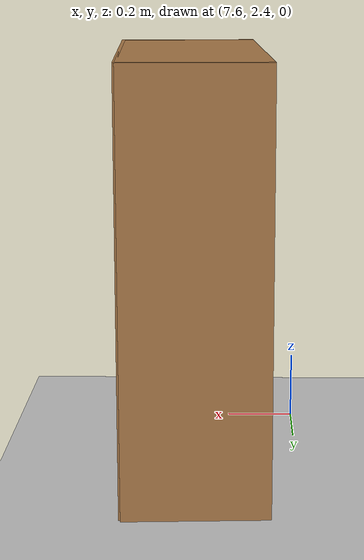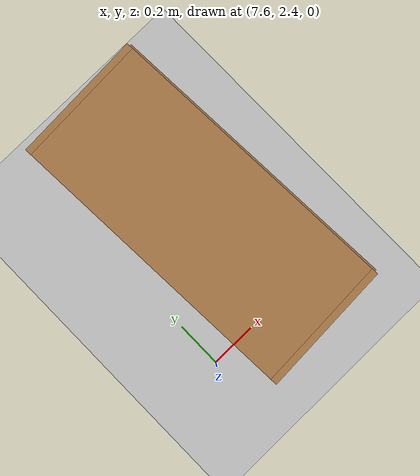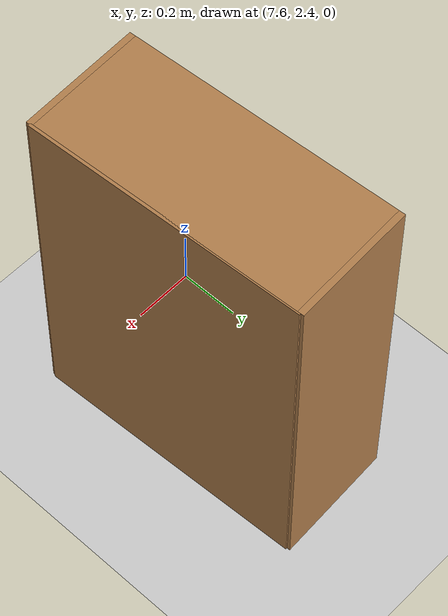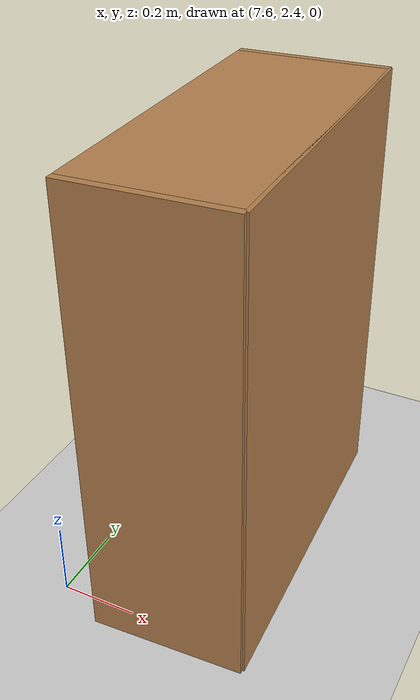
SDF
<sdf version="1.7">
 <world name="default">
  <model name="ground_plane">
   <static>1</static>
   <link name="link">
    <collision name="collision">
     <geometry><plane><normal>0 0 1</normal><size>100 100</size></plane></geometry>
     <surface><friction><ode><mu>100</mu><mu2>50</mu2></ode></friction></surface>
    </collision>
    <visual name="visual">
     <cast_shadows>0</cast_shadows>
     <geometry><plane><normal>0 0 1</normal><size>100 100</size></plane></geometry>
     <material>
      <script><uri>file://media/materials/scripts/gazebo.material</uri><name>Gazebo/Grey</name></script>
     </material>
    </visual>
   </link>
  </model>
  <light name="sun" type="directional">
   <pose>0 0 10 0 -0 0</pose>
   <diffuse>0.8 0.8 0.8 1</diffuse>
   <specular>0.2 0.2 0.2 1</specular>
   <attenuation>
    <range>1000</range>
    <constant>0.9</constant>
    <linear>0.01</linear>
    <quadratic>0.001</quadratic>
   </attenuation>
   <direction>-0.5 0.1 -0.9</direction>
   <spot><inner_angle>0</inner_angle><outer_angle>0</outer_angle><falloff>0</falloff></spot>
  </light>
  <scene><shadows>0</shadows><ambient>0.4 0.4 0.4 1</ambient><background>0.7 0.7 0.7 1</background></scene>
  <physics type="ode">
   <real_time_update_rate>1000</real_time_update_rate>
   <max_step_size>0.001</max_step_size>
   <real_time_factor>1</real_time_factor>
   <ode>
    <solver>
     <type>quick</type>
     <iters>150</iters>
     <precon_iters>0</precon_iters>
     <sor>1.4</sor>
     <use_dynamic_moi_rescaling>1</use_dynamic_moi_rescaling>
    </solver>
    <constraints>
     <cfm>1e-05</cfm>
     <erp>0.2</erp>
     <contact_max_correcting_vel>2000</contact_max_correcting_vel>
     <contact_surface_layer>0.01</contact_surface_layer>
    </constraints>
   </ode>
  </physics>
  <gravity>0 0 -9.8</gravity>
  <magnetic_field>6e-06 2.3e-05 -4.2e-05</magnetic_field>
  <atmosphere type="adiabatic"/>
  <audio><device>default</device></audio>
  <spherical_coordinates>
   <surface_model>EARTH_WGS84</surface_model>
   <latitude_deg>0</latitude_deg>
   <longitude_deg>0</longitude_deg>
   <elevation>0</elevation>
   <heading_deg>0</heading_deg>
  </spherical_coordinates>
  <model name="bookshelf">
   <static>1</static>
   <link name="link">
    <inertial><mass>1</mass></inertial>
    <collision name="back">
     <pose>0 0.005 0.6 0 -0 0</pose>
     <geometry><box><size>0.9 0.01 1.2</size></box></geometry>
    </collision>
    <visual name="visual1">
     <pose>0 0.005 0.6 0 -0 0</pose>
     <geometry><box><size>0.9 0.01 1.2</size></box></geometry>
     <material>
      <script><uri>file://media/materials/scripts/gazebo.material</uri><name>Gazebo/Wood</name></script>
     </material>
    </visual>
    <collision name="left_side">
     <pose>0.45 -0.195 0.6 0 -0 0</pose>
     <geometry><box><size>0.02 0.4 1.2</size></box></geometry>
    </collision>
    <visual name="visual2">
     <pose>0.45 -0.195 0.6 0 -0 0</pose>
     <geometry><box><size>0.02 0.4 1.2</size></box></geometry>
     <material>
      <script><uri>file://media/materials/scripts/gazebo.material</uri><name>Gazebo/Wood</name></script>
     </material>
    </visual>
    <collision name="right_side">
     <pose>-0.45 -0.195 0.6 0 -0 0</pose>
     <geometry><box><size>0.02 0.4 1.2</size></box></geometry>
    </collision>
    <visual name="visual3">
     <pose>-0.45 -0.195 0.6 0 -0 0</pose>
     <geometry><box><size>0.02 0.4 1.2</size></box></geometry>
     <material>
      <script><uri>file://media/materials/scripts/gazebo.material</uri><name>Gazebo/Wood</name></script>
     </material>
    </visual>
    <collision name="bottom">
     <pose>0 -0.195 0.03 0 -0 0</pose>
     <geometry><box><size>0.88 0.4 0.06</size></box></geometry>
    </collision>
    <visual name="visual4">
     <pose>0 -0.195 0.03 0 -0 0</pose>
     <geometry><box><size>0.88 0.4 0.06</size></box></geometry>
     <material>
      <script><uri>file://media/materials/scripts/gazebo.material</uri><name>Gazebo/Wood</name></script>
     </material>
    </visual>
    <collision name="top">
     <pose>0 -0.195 1.19 0 -0 0</pose>
     <geometry><box><size>0.88 0.4 0.02</size></box></geometry>
    </collision>
    <visual name="visual5">
     <pose>0 -0.195 1.19 0 -0 0</pose>
     <geometry><box><size>0.88 0.4 0.02</size></box></geometry>
     <material>
      <script><uri>file://media/materials/scripts/gazebo.material</uri><name>Gazebo/Wood</name></script>
     </material>
    </visual>
    <collision name="low_shelf">
     <pose>0 -0.195 0.43 0 -0 0</pose>
     <geometry><box><size>0.88 0.4 0.02</size></box></geometry>
    </collision>
    <visual name="visual6">
     <pose>0 -0.195 0.43 0 -0 0</pose>
     <geometry><box><size>0.88 0.4 0.02</size></box></geometry>
     <material>
      <script><uri>file://media/materials/scripts/gazebo.material</uri><name>Gazebo/Wood</name></script>
     </material>
    </visual>
    <collision name="high_shelf">
     <pose>0 -0.195 0.8 0 -0 0</pose>
     <geometry><box><size>0.88 0.4 0.02</size></box></geometry>
    </collision>
    <visual name="visual7">
     <pose>0 -0.195 0.8 0 -0 0</pose>
     <geometry><box><size>0.88 0.4 0.02</size></box></geometry>
     <material>
      <script><uri>file://media/materials/scripts/gazebo.material</uri><name>Gazebo/Wood</name></script>
     </material>
    </visual>
   </link>
   <pose>8.10172 2.81534 0 0 0 -1.52177</pose>
  </model>
 </world>
</sdf>
